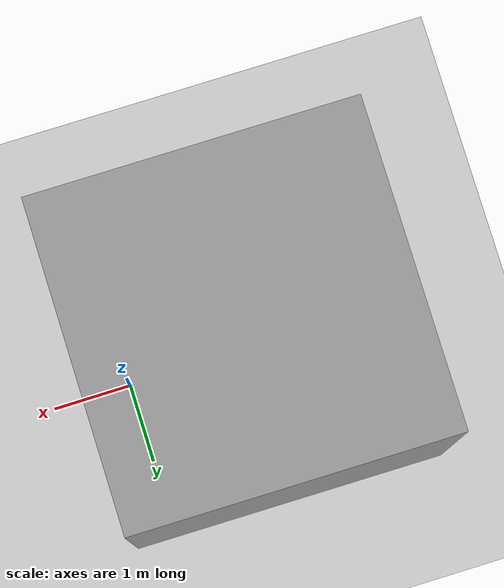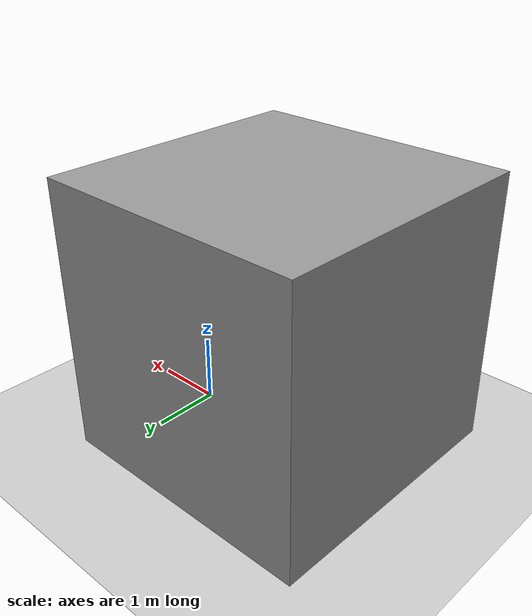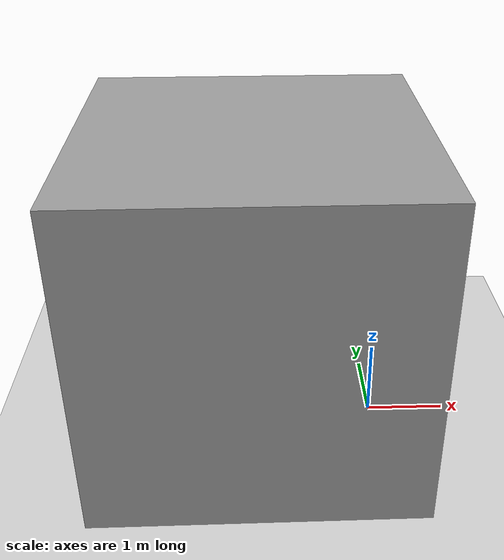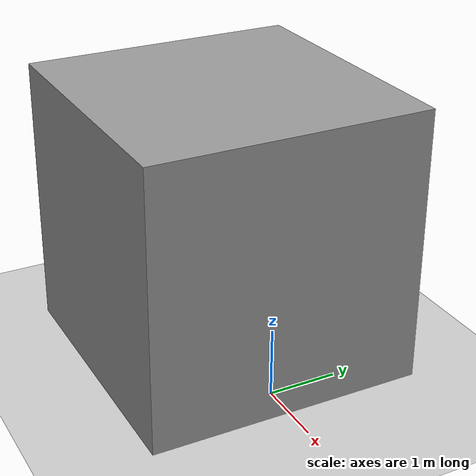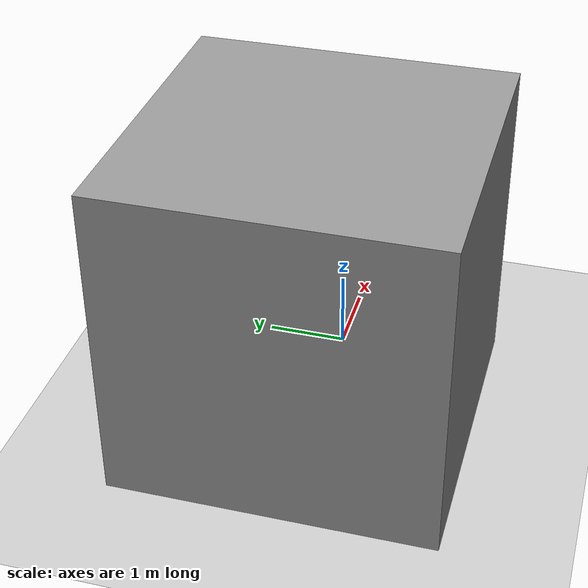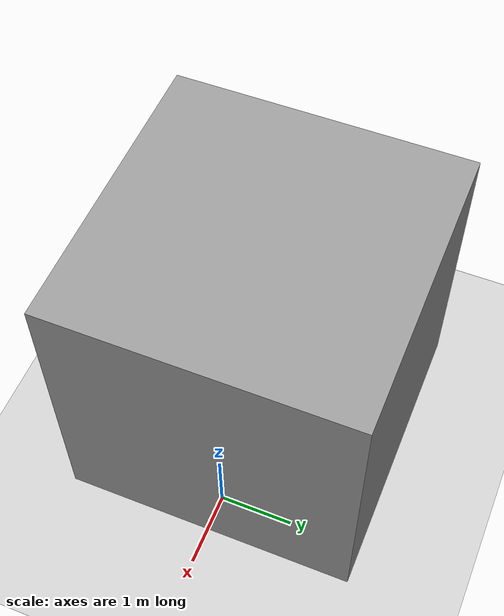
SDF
<sdf version="1.6">
 <world name="default">
  <light name="sun" type="directional">
   <pose>0 0 10 0 -0 0</pose>
   <diffuse>0.8 0.8 0.8 1</diffuse>
   <specular>0.2 0.2 0.2 1</specular>
   <attenuation>
    <range>1000</range>
    <constant>0.9</constant>
    <linear>0.01</linear>
    <quadratic>0.001</quadratic>
   </attenuation>
   <direction>-0.5 0.1 -0.9</direction>
  </light>
  <model name="ground_plane">
   <static>1</static>
   <link name="link">
    <collision name="collision">
     <geometry><plane><normal>0 0 1</normal><size>100 100</size></plane></geometry>
     <surface>
      <contact><collide_bitmask>65535</collide_bitmask></contact>
      <friction><ode><mu>100</mu><mu2>50</mu2></ode></friction>
     </surface>
    </collision>
    <visual name="visual">
     <cast_shadows>0</cast_shadows>
     <geometry><plane><normal>0 0 1</normal><size>100 100</size></plane></geometry>
     <material>
      <script><uri>file://media/materials/scripts/gazebo.material</uri><name>Gazebo/Grey</name></script>
     </material>
    </visual>
   </link>
  </model>
  <gravity>0 0 -1.42</gravity>
  <magnetic_field>6e-06 2.3e-05 -4.2e-05</magnetic_field>
  <atmosphere type="adiabatic"/>
  <physics name="default_physics" default="0" type="ode">
   <max_step_size>0.001</max_step_size>
   <real_time_factor>1</real_time_factor>
   <real_time_update_rate>1000</real_time_update_rate>
  </physics>
  <scene><ambient>0.4 0.4 0.4 1</ambient><background>0.7 0.7 0.7 1</background><shadows>1</shadows></scene>
  <audio><device>default</device></audio>
  <spherical_coordinates>
   <surface_model>EARTH_WGS84</surface_model>
   <latitude_deg>0</latitude_deg>
   <longitude_deg>0</longitude_deg>
   <elevation>0</elevation>
   <heading_deg>0</heading_deg>
  </spherical_coordinates>
  <model name="unit_box">
   <link name="link">
    <inertial>
     <mass>100000</mass>
     <inertia><ixx>16666.7</ixx><ixy>0</ixy><ixz>0</ixz><iyy>16666.7</iyy><iyz>0</iyz><izz>16666.7</izz></inertia>
    </inertial>
    <visual name="visual">
     <geometry><box><size>4 4 4</size></box></geometry>
     <material>
      <script><name>Gazebo/Grey</name><uri>file://media/materials/scripts/gazebo.material</uri></script>
      <shader type="vertex"><normal_map>__default__</normal_map></shader>
      <ambient>0.3 0.3 0.3 1</ambient>
      <diffuse>0.7 0.7 0.7 1</diffuse>
      <specular>0.01 0.01 0.01 1</specular>
      <emissive>0 0 0 1</emissive>
     </material>
    </visual>
    <collision name="collision">
     <geometry><box><size>4 4 4</size></box></geometry>
     <surface>
      <friction>
       <ode><mu>1</mu><mu2>1</mu2><fdir1>0 0 0</fdir1><slip1>0</slip1><slip2>0</slip2></ode>
       <torsional>
        <coefficient>1</coefficient>
        <patch_radius>0</patch_radius>
        <surface_radius>0</surface_radius>
        <use_patch_radius>1</use_patch_radius>
        <ode><slip>0</slip></ode>
       </torsional>
      </friction>
      <bounce><restitution_coefficient>0</restitution_coefficient><threshold>1e+06</threshold></bounce>
      <contact>
       <collide_without_contact>0</collide_without_contact>
       <collide_without_contact_bitmask>1</collide_without_contact_bitmask>
       <collide_bitmask>1</collide_bitmask>
       <ode>
        <soft_cfm>0</soft_cfm>
        <soft_erp>0.2</soft_erp>
        <kp>1e+13</kp>
        <kd>1</kd>
        <max_vel>0.01</max_vel>
        <min_depth>0</min_depth>
       </ode>
       <bullet>
        <split_impulse>1</split_impulse>
        <split_impulse_penetration_threshold>-0.01</split_impulse_penetration_threshold>
        <soft_cfm>0</soft_cfm>
        <soft_erp>0.2</soft_erp>
        <kp>1e+13</kp>
        <kd>1</kd>
       </bullet>
      </contact>
     </surface>
    </collision>
   </link>
   <static>0</static>
   <pose>-1.5 0 2.0 0 -0 0</pose>
  </model>
  <model name="unit_sphere_1">
   <link name="link">
    <inertial>
     <mass>0.1</mass>
     <inertia><ixx>0.01</ixx><ixy>0</ixy><ixz>0</ixz><iyy>0.01</iyy><iyz>0</iyz><izz>0.01</izz></inertia>
    </inertial>
    <visual name="visual">
     <geometry><sphere><radius>0.02</radius></sphere></geometry>
     <material>
      <script><name>Gazebo/Grey</name><uri>file://media/materials/scripts/gazebo.material</uri></script>
      <shader type="vertex"><normal_map>__default__</normal_map></shader>
      <ambient>0.3 0.3 0.3 1</ambient>
      <diffuse>0.7 0.7 0.7 1</diffuse>
      <specular>0.01 0.01 0.01 1</specular>
      <emissive>0 0 0 1</emissive>
     </material>
    </visual>
    <collision name="collision">
     <geometry><sphere><radius>0.02</radius></sphere></geometry>
     <surface>
      <friction>
       <ode><mu>1</mu><mu2>1</mu2><fdir1>0 0 0</fdir1><slip1>0</slip1><slip2>0</slip2></ode>
       <torsional>
        <coefficient>1</coefficient>
        <patch_radius>0</patch_radius>
        <surface_radius>0</surface_radius>
        <use_patch_radius>1</use_patch_radius>
        <ode><slip>0</slip></ode>
       </torsional>
      </friction>
      <bounce><restitution_coefficient>0</restitution_coefficient><threshold>1e+06</threshold></bounce>
      <contact>
       <collide_without_contact>0</collide_without_contact>
       <collide_without_contact_bitmask>1</collide_without_contact_bitmask>
       <collide_bitmask>1</collide_bitmask>
       <ode>
        <soft_cfm>0</soft_cfm>
        <soft_erp>0.2</soft_erp>
        <kp>1e+13</kp>
        <kd>1</kd>
        <max_vel>0.01</max_vel>
        <min_depth>0</min_depth>
       </ode>
       <bullet>
        <split_impulse>1</split_impulse>
        <split_impulse_penetration_threshold>-0.01</split_impulse_penetration_threshold>
        <soft_cfm>0</soft_cfm>
        <soft_erp>0.2</soft_erp>
        <kp>1e+13</kp>
        <kd>1</kd>
       </bullet>
      </contact>
     </surface>
    </collision>
   </link>
   <static>0</static>
   <pose>0.23404 -1.80 1.94 0 -0 0</pose>
  </model>
  <model name="unit_sphere_2">
   <link name="link">
    <inertial>
     <mass>0.1</mass>
     <inertia><ixx>0.01</ixx><ixy>0</ixy><ixz>0</ixz><iyy>0.01</iyy><iyz>0</iyz><izz>0.01</izz></inertia>
    </inertial>
    <visual name="visual">
     <geometry><sphere><radius>0.02</radius></sphere></geometry>
     <material>
      <script><name>Gazebo/Grey</name><uri>file://media/materials/scripts/gazebo.material</uri></script>
      <shader type="vertex"><normal_map>__default__</normal_map></shader>
      <ambient>0.3 0.3 0.3 1</ambient>
      <diffuse>0.7 0.7 0.7 1</diffuse>
      <specular>0.01 0.01 0.01 1</specular>
      <emissive>0 0 0 1</emissive>
     </material>
    </visual>
    <collision name="collision">
     <geometry><sphere><radius>0.02</radius></sphere></geometry>
     <surface>
      <friction>
       <ode><mu>1</mu><mu2>1</mu2><fdir1>0 0 0</fdir1><slip1>0</slip1><slip2>0</slip2></ode>
       <torsional>
        <coefficient>1</coefficient>
        <patch_radius>0</patch_radius>
        <surface_radius>0</surface_radius>
        <use_patch_radius>1</use_patch_radius>
        <ode><slip>0</slip></ode>
       </torsional>
      </friction>
      <bounce><restitution_coefficient>0</restitution_coefficient><threshold>1e+06</threshold></bounce>
      <contact>
       <collide_without_contact>0</collide_without_contact>
       <collide_without_contact_bitmask>1</collide_without_contact_bitmask>
       <collide_bitmask>1</collide_bitmask>
       <ode>
        <soft_cfm>0</soft_cfm>
        <soft_erp>0.2</soft_erp>
        <kp>1e+13</kp>
        <kd>1</kd>
        <max_vel>0.01</max_vel>
        <min_depth>0</min_depth>
       </ode>
       <bullet>
        <split_impulse>1</split_impulse>
        <split_impulse_penetration_threshold>-0.01</split_impulse_penetration_threshold>
        <soft_cfm>0</soft_cfm>
        <soft_erp>0.2</soft_erp>
        <kp>1e+13</kp>
        <kd>1</kd>
       </bullet>
      </contact>
     </surface>
    </collision>
   </link>
   <static>0</static>
   <pose>0.18 -1.80 1.94 0 -0 0</pose>
  </model>
  <model name="unit_sphere_3">
   <link name="link">
    <inertial>
     <mass>0.1</mass>
     <inertia><ixx>0.01</ixx><ixy>0</ixy><ixz>0</ixz><iyy>0.01</iyy><iyz>0</iyz><izz>0.01</izz></inertia>
    </inertial>
    <visual name="visual">
     <geometry><sphere><radius>0.02</radius></sphere></geometry>
     <material>
      <script><name>Gazebo/Grey</name><uri>file://media/materials/scripts/gazebo.material</uri></script>
      <shader type="vertex"><normal_map>__default__</normal_map></shader>
      <ambient>0.3 0.3 0.3 1</ambient>
      <diffuse>0.7 0.7 0.7 1</diffuse>
      <specular>0.01 0.01 0.01 1</specular>
      <emissive>0 0 0 1</emissive>
     </material>
    </visual>
    <collision name="collision">
     <geometry><sphere><radius>0.02</radius></sphere></geometry>
     <surface>
      <friction>
       <ode><mu>1</mu><mu2>1</mu2><fdir1>0 0 0</fdir1><slip1>0</slip1><slip2>0</slip2></ode>
       <torsional>
        <coefficient>1</coefficient>
        <patch_radius>0</patch_radius>
        <surface_radius>0</surface_radius>
        <use_patch_radius>1</use_patch_radius>
        <ode><slip>0</slip></ode>
       </torsional>
      </friction>
      <bounce><restitution_coefficient>0</restitution_coefficient><threshold>1e+06</threshold></bounce>
      <contact>
       <collide_without_contact>0</collide_without_contact>
       <collide_without_contact_bitmask>1</collide_without_contact_bitmask>
       <collide_bitmask>1</collide_bitmask>
       <ode>
        <soft_cfm>0</soft_cfm>
        <soft_erp>0.2</soft_erp>
        <kp>1e+13</kp>
        <kd>1</kd>
        <max_vel>0.01</max_vel>
        <min_depth>0</min_depth>
       </ode>
       <bullet>
        <split_impulse>1</split_impulse>
        <split_impulse_penetration_threshold>-0.01</split_impulse_penetration_threshold>
        <soft_cfm>0</soft_cfm>
        <soft_erp>0.2</soft_erp>
        <kp>1e+13</kp>
        <kd>1</kd>
       </bullet>
      </contact>
     </surface>
    </collision>
   </link>
   <static>0</static>
   <pose>0.13 -1.80 1.94 0 -0 0</pose>
  </model>
 </world>
</sdf>
